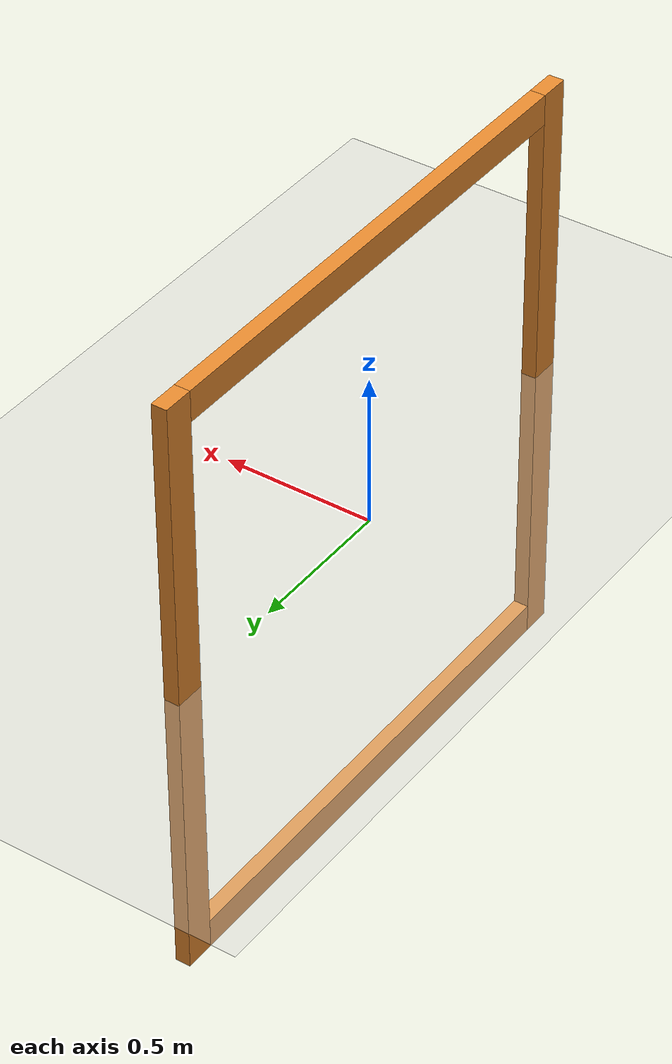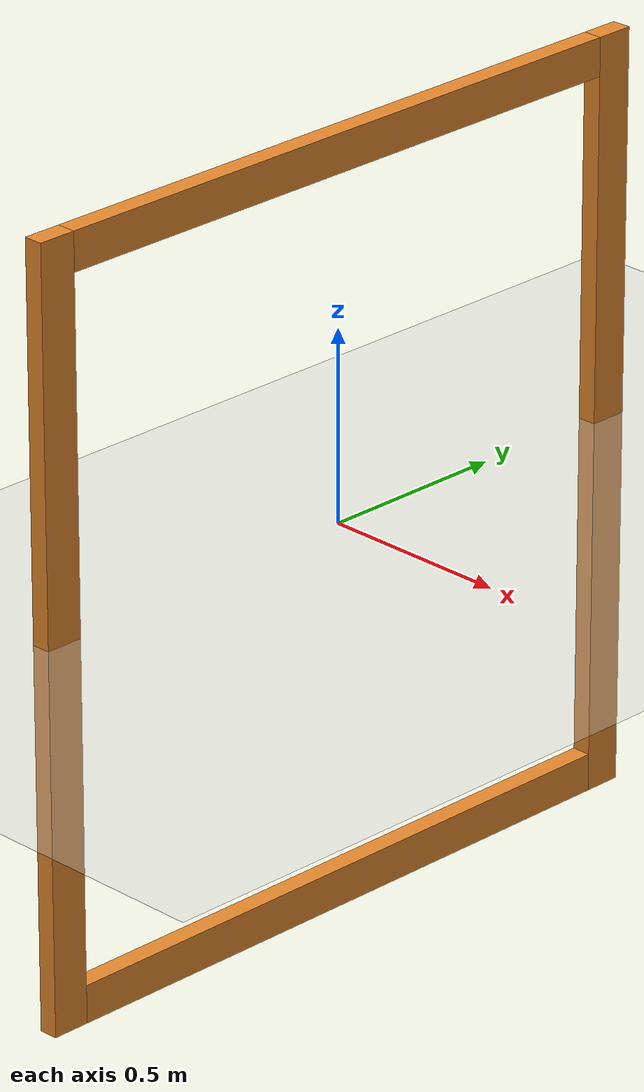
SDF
<sdf version="1.4">
 <world name="smart_drone_simple_world">
  <include><uri>model://ground_plane</uri></include>
  <include><uri>model://sun</uri></include>
  <model name="smart_drone_orange_gate3">
   <link name="left">
    <pose>0 -0.9 0 0 -0 0</pose>
    <inertial>
     <mass>1</mass>
     <inertia>
      <ixx>0.166667</ixx>
      <ixy>0</ixy>
      <ixz>0</ixz>
      <iyy>0.166667</iyy>
      <iyz>0</iyz>
      <izz>0.166667</izz>
     </inertia>
     <pose>0 -0.9 0 0 -0 0</pose>
    </inertial>
    <visual name="visual">
     <geometry><box><size>0.05 0.1 2</size></box></geometry>
     <material>
      <lighting>1</lighting>
      <script><uri>file://media/materials/scripts/gazebo.material</uri><name>Gazebo/Grey</name></script>
      <shader type="pixel"><normal_map>__default__</normal_map></shader>
      <ambient>0.9 0.54 0.18 1</ambient>
      <diffuse>0.9 0.54 0.18 1</diffuse>
      <specular>0.9 0.54 0.18 1</specular>
      <emissive>0 0 0 1</emissive>
     </material>
    </visual>
    <collision name="collision">
     <geometry><box><size>0.05 0.1 2</size></box></geometry>
     <surface>
      <friction>
       <ode><mu>1</mu><mu2>1</mu2><fdir1>0 0 0</fdir1><slip1>0</slip1><slip2>0</slip2></ode>
       <torsional>
        <coefficient>1</coefficient>
        <patch_radius>0</patch_radius>
        <surface_radius>0</surface_radius>
        <use_patch_radius>1</use_patch_radius>
        <ode><slip>0</slip></ode>
       </torsional>
      </friction>
      <bounce><restitution_coefficient>0</restitution_coefficient><threshold>1e+06</threshold></bounce>
      <contact>
       <collide_without_contact>0</collide_without_contact>
       <collide_without_contact_bitmask>1</collide_without_contact_bitmask>
       <collide_bitmask>1</collide_bitmask>
       <ode>
        <soft_cfm>0</soft_cfm>
        <soft_erp>0.2</soft_erp>
        <kp>1e+13</kp>
        <kd>1</kd>
        <max_vel>0.01</max_vel>
        <min_depth>0</min_depth>
       </ode>
       <bullet>
        <split_impulse>1</split_impulse>
        <split_impulse_penetration_threshold>-0.01</split_impulse_penetration_threshold>
        <soft_cfm>0</soft_cfm>
        <soft_erp>0.2</soft_erp>
        <kp>1e+13</kp>
        <kd>1</kd>
       </bullet>
      </contact>
     </surface>
    </collision>
   </link>
   <link name="top">
    <pose>0 0 0.95 0 -0 0</pose>
    <inertial>
     <mass>1</mass>
     <inertia>
      <ixx>0.166667</ixx>
      <ixy>0</ixy>
      <ixz>0</ixz>
      <iyy>0.166667</iyy>
      <iyz>0</iyz>
      <izz>0.166667</izz>
     </inertia>
     <pose>0 0 0.95 0 -0 0</pose>
    </inertial>
    <visual name="visual">
     <geometry><box><size>0.05 1.7 0.1</size></box></geometry>
     <material>
      <lighting>1</lighting>
      <script><uri>file://media/materials/scripts/gazebo.material</uri><name>Gazebo/Grey</name></script>
      <shader type="pixel"><normal_map>__default__</normal_map></shader>
      <ambient>0.9 0.54 0.18 1</ambient>
      <diffuse>0.9 0.54 0.18 1</diffuse>
      <specular>0.9 0.54 0.18 1</specular>
      <emissive>0 0 0 1</emissive>
     </material>
    </visual>
    <collision name="collision">
     <geometry><box><size>0.05 1.7 0.1</size></box></geometry>
     <surface>
      <friction>
       <ode><mu>1</mu><mu2>1</mu2><fdir1>0 0 0</fdir1><slip1>0</slip1><slip2>0</slip2></ode>
       <torsional>
        <coefficient>1</coefficient>
        <patch_radius>0</patch_radius>
        <surface_radius>0</surface_radius>
        <use_patch_radius>1</use_patch_radius>
        <ode><slip>0</slip></ode>
       </torsional>
      </friction>
      <bounce><restitution_coefficient>0</restitution_coefficient><threshold>1e+06</threshold></bounce>
      <contact>
       <collide_without_contact>0</collide_without_contact>
       <collide_without_contact_bitmask>1</collide_without_contact_bitmask>
       <collide_bitmask>1</collide_bitmask>
       <ode>
        <soft_cfm>0</soft_cfm>
        <soft_erp>0.2</soft_erp>
        <kp>1e+13</kp>
        <kd>1</kd>
        <max_vel>0.01</max_vel>
        <min_depth>0</min_depth>
       </ode>
       <bullet>
        <split_impulse>1</split_impulse>
        <split_impulse_penetration_threshold>-0.01</split_impulse_penetration_threshold>
        <soft_cfm>0</soft_cfm>
        <soft_erp>0.2</soft_erp>
        <kp>1e+13</kp>
        <kd>1</kd>
       </bullet>
      </contact>
     </surface>
    </collision>
   </link>
   <link name="bot">
    <pose>0 0 -0.95 0 -0 0</pose>
    <inertial>
     <mass>1</mass>
     <inertia>
      <ixx>0.166667</ixx>
      <ixy>0</ixy>
      <ixz>0</ixz>
      <iyy>0.166667</iyy>
      <iyz>0</iyz>
      <izz>0.166667</izz>
     </inertia>
     <pose>0 0 -0.95 0 -0 0</pose>
    </inertial>
    <visual name="visual">
     <geometry><box><size>0.05 1.7 0.1</size></box></geometry>
     <material>
      <lighting>1</lighting>
      <script><uri>file://media/materials/scripts/gazebo.material</uri><name>Gazebo/Grey</name></script>
      <shader type="pixel"><normal_map>__default__</normal_map></shader>
      <ambient>0.9 0.54 0.18 1</ambient>
      <diffuse>0.9 0.54 0.18 1</diffuse>
      <specular>0.9 0.54 0.18 1</specular>
      <emissive>0 0 0 1</emissive>
     </material>
    </visual>
    <collision name="collision">
     <geometry><box><size>0.05 1.7 0.1</size></box></geometry>
     <surface>
      <friction>
       <ode><mu>1</mu><mu2>1</mu2><fdir1>0 0 0</fdir1><slip1>0</slip1><slip2>0</slip2></ode>
       <torsional>
        <coefficient>1</coefficient>
        <patch_radius>0</patch_radius>
        <surface_radius>0</surface_radius>
        <use_patch_radius>1</use_patch_radius>
        <ode><slip>0</slip></ode>
       </torsional>
      </friction>
      <bounce><restitution_coefficient>0</restitution_coefficient><threshold>1e+06</threshold></bounce>
      <contact>
       <collide_without_contact>0</collide_without_contact>
       <collide_without_contact_bitmask>1</collide_without_contact_bitmask>
       <collide_bitmask>1</collide_bitmask>
       <ode>
        <soft_cfm>0</soft_cfm>
        <soft_erp>0.2</soft_erp>
        <kp>1e+13</kp>
        <kd>1</kd>
        <max_vel>0.01</max_vel>
        <min_depth>0</min_depth>
       </ode>
       <bullet>
        <split_impulse>1</split_impulse>
        <split_impulse_penetration_threshold>-0.01</split_impulse_penetration_threshold>
        <soft_cfm>0</soft_cfm>
        <soft_erp>0.2</soft_erp>
        <kp>1e+13</kp>
        <kd>1</kd>
       </bullet>
      </contact>
     </surface>
    </collision>
   </link>
   <link name="right">
    <pose>0 0.9 0 0 -0 0</pose>
    <inertial>
     <mass>1</mass>
     <inertia>
      <ixx>0.166667</ixx>
      <ixy>0</ixy>
      <ixz>0</ixz>
      <iyy>0.166667</iyy>
      <iyz>0</iyz>
      <izz>0.166667</izz>
     </inertia>
     <pose>0 0.9 0 0 -0 0</pose>
    </inertial>
    <visual name="visual">
     <geometry><box><size>0.05 0.1 2</size></box></geometry>
     <material>
      <lighting>1</lighting>
      <script><uri>file://media/materials/scripts/gazebo.material</uri><name>Gazebo/Grey</name></script>
      <shader type="pixel"><normal_map>__default__</normal_map></shader>
      <ambient>0.9 0.54 0.18 1</ambient>
      <diffuse>0.9 0.54 0.18 1</diffuse>
      <specular>0.9 0.54 0.18 1</specular>
      <emissive>0 0 0 1</emissive>
     </material>
    </visual>
    <collision name="collision">
     <geometry><box><size>0.05 0.1 2</size></box></geometry>
     <surface>
      <friction>
       <ode><mu>1</mu><mu2>1</mu2><fdir1>0 0 0</fdir1><slip1>0</slip1><slip2>0</slip2></ode>
       <torsional>
        <coefficient>1</coefficient>
        <patch_radius>0</patch_radius>
        <surface_radius>0</surface_radius>
        <use_patch_radius>1</use_patch_radius>
        <ode><slip>0</slip></ode>
       </torsional>
      </friction>
      <bounce><restitution_coefficient>0</restitution_coefficient><threshold>1e+06</threshold></bounce>
      <contact>
       <collide_without_contact>0</collide_without_contact>
       <collide_without_contact_bitmask>1</collide_without_contact_bitmask>
       <collide_bitmask>1</collide_bitmask>
       <ode>
        <soft_cfm>0</soft_cfm>
        <soft_erp>0.2</soft_erp>
        <kp>1e+13</kp>
        <kd>1</kd>
        <max_vel>0.01</max_vel>
        <min_depth>0</min_depth>
       </ode>
       <bullet>
        <split_impulse>1</split_impulse>
        <split_impulse_penetration_threshold>-0.01</split_impulse_penetration_threshold>
        <soft_cfm>0</soft_cfm>
        <soft_erp>0.2</soft_erp>
        <kp>1e+13</kp>
        <kd>1</kd>
       </bullet>
      </contact>
     </surface>
    </collision>
   </link>
   <static>1</static>
  </model>
 </world>
</sdf>
